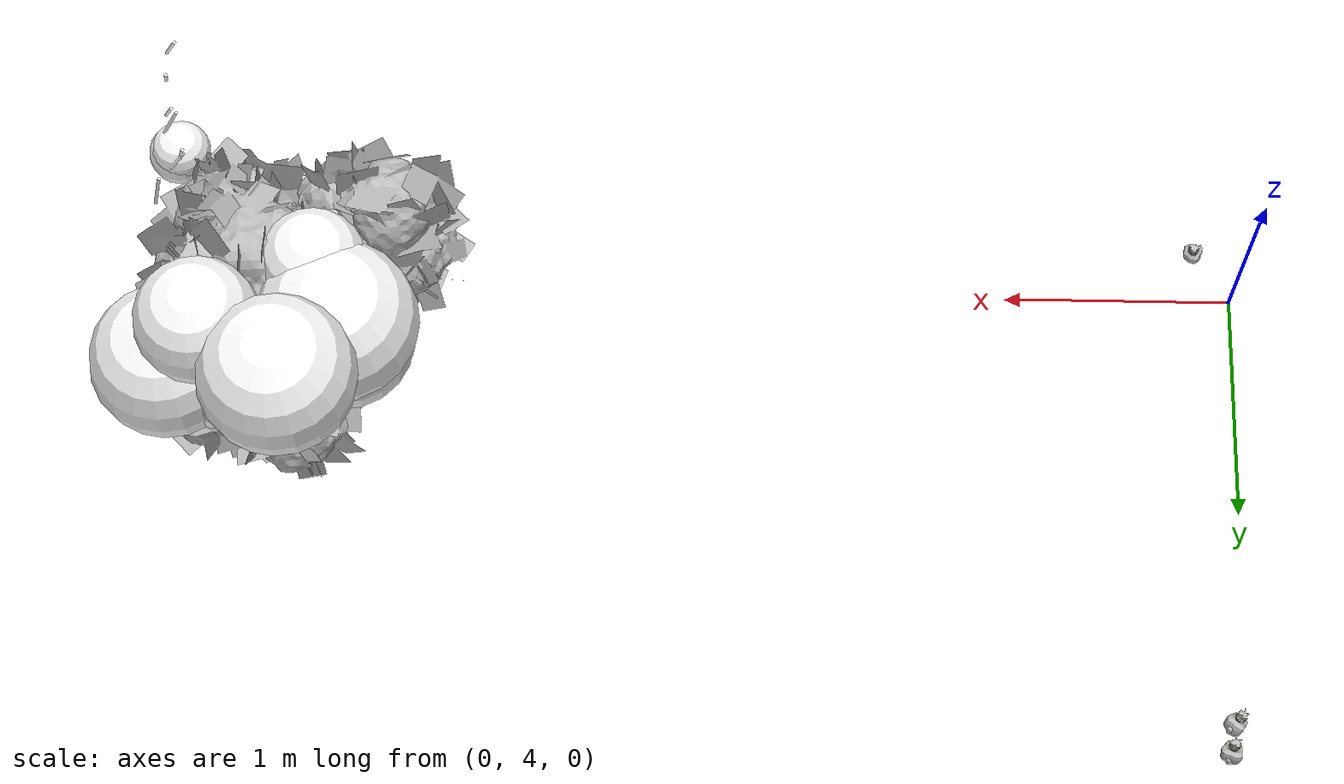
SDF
<sdf version="1.11">
 <world name="peach_orchard">
  <model name="ground">
   <static>true</static>
   <link name="link">
    <visual name="soil">
     <geometry><plane><normal>0 0 1</normal><size>32 22</size></plane></geometry>
     <material>
      <ambient>1 1 1 1</ambient>
      <diffuse>1 1 1 1</diffuse>
      <specular>0.1 0.1 0.1 1</specular>
      <pbr>
       <metal>
        <albedo_map>textures/soil_albedo.png</albedo_map>
        <normal_map type="tangent">textures/soil_normal.png</normal_map>
        <roughness>0.95</roughness>
        <metalness>0</metalness>
       </metal>
      </pbr>
     </material>
    </visual>
    <collision name="c_soil">
     <geometry><plane><normal>0 0 1</normal><size>32 22</size></plane></geometry>
    </collision>
   </link>
  </model>
  <model name="tree_r3_t5">
   <pose>4 4.4 0 0 0 0</pose>
   <static>true</static>
   <link name="link">
    <visual name="tree_mesh">
     <pose>0 0 0 0 0 -0.258499</pose>
     <geometry>
      <mesh><uri>model://peach_sim/meshes/peach_tree_b.glb</uri><scale>0.949625 0.949625 0.949625</scale></mesh>
     </geometry>
    </visual>
    <visual name="trunk_0">
     <pose>0 0 0.165648 0 0 0</pose>
     <geometry><cylinder><radius>0.054194</radius><length>0.331296</length></cylinder></geometry>
     <material>
      <ambient>1 1 1 1</ambient>
      <diffuse>1 1 1 1</diffuse>
      <specular>0.1 0.1 0.1 1</specular>
      <pbr>
       <metal>
        <albedo_map>textures/bark_albedo.png</albedo_map>
        <normal_map type="tangent">textures/bark_normal.png</normal_map>
        <roughness>0.9</roughness>
        <metalness>0</metalness>
       </metal>
      </pbr>
     </material>
    </visual>
    <collision name="c_trunk_0">
     <pose>0 0 0.165648 0 0 0</pose>
     <geometry><cylinder><radius>0.054194</radius><length>0.331296</length></cylinder></geometry>
    </collision>
    <visual name="trunk_1">
     <pose>0 0 0.466826 0 0 0</pose>
     <geometry><cylinder><radius>0.0390197</radius><length>0.27106</length></cylinder></geometry>
     <material>
      <ambient>1 1 1 1</ambient>
      <diffuse>1 1 1 1</diffuse>
      <specular>0.1 0.1 0.1 1</specular>
      <pbr>
       <metal>
        <albedo_map>textures/bark_albedo.png</albedo_map>
        <normal_map type="tangent">textures/bark_normal.png</normal_map>
        <roughness>0.9</roughness>
        <metalness>0</metalness>
       </metal>
      </pbr>
     </material>
    </visual>
    <collision name="c_trunk_1">
     <pose>0 0 0.466826 0 0 0</pose>
     <geometry><cylinder><radius>0.0390197</radius><length>0.27106</length></cylinder></geometry>
    </collision>
    <visual name="root_flare">
     <pose>0 0 0.035 0 0 0</pose>
     <geometry><cylinder><radius>0.0785813</radius><length>0.07</length></cylinder></geometry>
     <material>
      <ambient>1 1 1 1</ambient>
      <diffuse>1 1 1 1</diffuse>
      <specular>0.1 0.1 0.1 1</specular>
      <pbr>
       <metal>
        <albedo_map>textures/bark_albedo.png</albedo_map>
        <normal_map type="tangent">textures/bark_normal.png</normal_map>
        <roughness>0.95</roughness>
        <metalness>0</metalness>
       </metal>
      </pbr>
     </material>
    </visual>
    <visual name="scaffold_0">
     <pose>-0.0632101 0.345211 0.829526 0 0.905512 1.7519</pose>
     <geometry><cylinder><radius>0.022</radius><length>0.892161</length></cylinder></geometry>
     <material>
      <ambient>1 1 1 1</ambient>
      <diffuse>1 1 1 1</diffuse>
      <specular>0.1 0.1 0.1 1</specular>
      <pbr>
       <metal>
        <albedo_map>textures/bark_albedo.png</albedo_map>
        <normal_map type="tangent">textures/bark_normal.png</normal_map>
        <roughness>0.9</roughness>
        <metalness>0</metalness>
       </metal>
      </pbr>
     </material>
    </visual>
    <collision name="c_scaffold_0">
     <pose>-0.0632101 0.345211 0.829526 0 0.905512 1.7519</pose>
     <geometry><cylinder><radius>0.022</radius><length>0.892161</length></cylinder></geometry>
    </collision>
    <visual name="branchlet_0_0">
     <pose>-0.0942612 0.486677 0.955568 0 0.834985 1.80136</pose>
     <geometry><cylinder><radius>0.012</radius><length>0.276331</length></cylinder></geometry>
     <material>
      <ambient>1 1 1 1</ambient>
      <diffuse>1 1 1 1</diffuse>
      <specular>0.1 0.1 0.1 1</specular>
      <pbr>
       <metal>
        <albedo_map>textures/bark_albedo.png</albedo_map>
        <normal_map type="tangent">textures/bark_normal.png</normal_map>
        <roughness>0.9</roughness>
        <metalness>0</metalness>
       </metal>
      </pbr>
     </material>
    </visual>
    <visual name="branchlet_0_1">
     <pose>-0.169162 0.451263 0.895004 0 1.23139 2.46433</pose>
     <geometry><cylinder><radius>0.012</radius><length>0.276183</length></cylinder></geometry>
     <material>
      <ambient>1 1 1 1</ambient>
      <diffuse>1 1 1 1</diffuse>
      <specular>0.1 0.1 0.1 1</specular>
      <pbr>
       <metal>
        <albedo_map>textures/bark_albedo.png</albedo_map>
        <normal_map type="tangent">textures/bark_normal.png</normal_map>
        <roughness>0.9</roughness>
        <metalness>0</metalness>
       </metal>
      </pbr>
     </material>
    </visual>
    <visual name="branchlet_0_2">
     <pose>-0.0259571 0.489117 0.961929 0 0.844355 1.16166</pose>
     <geometry><cylinder><radius>0.012</radius><length>0.300749</length></cylinder></geometry>
     <material>
      <ambient>1 1 1 1</ambient>
      <diffuse>1 1 1 1</diffuse>
      <specular>0.1 0.1 0.1 1</specular>
      <pbr>
       <metal>
        <albedo_map>textures/bark_albedo.png</albedo_map>
        <normal_map type="tangent">textures/bark_normal.png</normal_map>
        <roughness>0.9</roughness>
        <metalness>0</metalness>
       </metal>
      </pbr>
     </material>
    </visual>
    <visual name="scaffold_1">
     <pose>0.0573903 0.290149 0.844512 0 0.794655 1.37552</pose>
     <geometry><cylinder><radius>0.022</radius><length>0.828927</length></cylinder></geometry>
     <material>
      <ambient>1 1 1 1</ambient>
      <diffuse>1 1 1 1</diffuse>
      <specular>0.1 0.1 0.1 1</specular>
      <pbr>
       <metal>
        <albedo_map>textures/bark_albedo.png</albedo_map>
        <normal_map type="tangent">textures/bark_normal.png</normal_map>
        <roughness>0.9</roughness>
        <metalness>0</metalness>
       </metal>
      </pbr>
     </material>
    </visual>
    <collision name="c_scaffold_1">
     <pose>0.0573903 0.290149 0.844512 0 0.794655 1.37552</pose>
     <geometry><cylinder><radius>0.022</radius><length>0.828927</length></cylinder></geometry>
    </collision>
    <visual name="branchlet_1_0">
     <pose>0.153573 0.402125 0.882291 0 1.45813 0.769118</pose>
     <geometry><cylinder><radius>0.012</radius><length>0.256498</length></cylinder></geometry>
     <material>
      <ambient>1 1 1 1</ambient>
      <diffuse>1 1 1 1</diffuse>
      <specular>0.1 0.1 0.1 1</specular>
      <pbr>
       <metal>
        <albedo_map>textures/bark_albedo.png</albedo_map>
        <normal_map type="tangent">textures/bark_normal.png</normal_map>
        <roughness>0.9</roughness>
        <metalness>0</metalness>
       </metal>
      </pbr>
     </material>
    </visual>
    <visual name="branchlet_1_1">
     <pose>0.0276121 0.461654 1.16507 0 0.384813 3.04429</pose>
     <geometry><cylinder><radius>0.012</radius><length>0.334544</length></cylinder></geometry>
     <material>
      <ambient>1 1 1 1</ambient>
      <diffuse>1 1 1 1</diffuse>
      <specular>0.1 0.1 0.1 1</specular>
      <pbr>
       <metal>
        <albedo_map>textures/bark_albedo.png</albedo_map>
        <normal_map type="tangent">textures/bark_normal.png</normal_map>
        <roughness>0.9</roughness>
        <metalness>0</metalness>
       </metal>
      </pbr>
     </material>
    </visual>
    <visual name="canopy_0">
     <pose>0.205331 0.643799 2.09957 0 0 0</pose>
     <geometry><sphere><radius>0.23951</radius></sphere></geometry>
     <material>
      <ambient>1 1 1 1</ambient>
      <diffuse>1 1 1 1</diffuse>
      <specular>0.1 0.1 0.1 1</specular>
      <pbr>
       <metal>
        <albedo_map>textures/leaf_albedo.png</albedo_map>
        <normal_map type="tangent">textures/leaf_normal.png</normal_map>
        <roughness>0.85</roughness>
        <metalness>0</metalness>
       </metal>
      </pbr>
     </material>
    </visual>
    <collision name="c_canopy_0">
     <pose>0.205331 0.643799 2.09957 0 0 0</pose>
     <geometry><sphere><radius>0.23951</radius></sphere></geometry>
    </collision>
    <visual name="canopy_1">
     <pose>0.18669 0.644557 1.78408 0 0 0</pose>
     <geometry><sphere><radius>0.289051</radius></sphere></geometry>
     <material>
      <ambient>1 1 1 1</ambient>
      <diffuse>1 1 1 1</diffuse>
      <specular>0.1 0.1 0.1 1</specular>
      <pbr>
       <metal>
        <albedo_map>textures/leaf_albedo.png</albedo_map>
        <normal_map type="tangent">textures/leaf_normal.png</normal_map>
        <roughness>0.85</roughness>
        <metalness>0</metalness>
       </metal>
      </pbr>
     </material>
    </visual>
    <collision name="c_canopy_1">
     <pose>0.18669 0.644557 1.78408 0 0 0</pose>
     <geometry><sphere><radius>0.289051</radius></sphere></geometry>
    </collision>
    <visual name="canopy_2">
     <pose>-0.282506 0.558122 1.89588 0 0 0</pose>
     <geometry><sphere><radius>0.317283</radius></sphere></geometry>
     <material>
      <ambient>1 1 1 1</ambient>
      <diffuse>1 1 1 1</diffuse>
      <specular>0.1 0.1 0.1 1</specular>
      <pbr>
       <metal>
        <albedo_map>textures/leaf_albedo.png</albedo_map>
        <normal_map type="tangent">textures/leaf_normal.png</normal_map>
        <roughness>0.85</roughness>
        <metalness>0</metalness>
       </metal>
      </pbr>
     </material>
    </visual>
    <collision name="c_canopy_2">
     <pose>-0.282506 0.558122 1.89588 0 0 0</pose>
     <geometry><sphere><radius>0.317283</radius></sphere></geometry>
    </collision>
    <visual name="canopy_3">
     <pose>-0.211474 0.44633 1.84649 0 0 0</pose>
     <geometry><sphere><radius>0.199162</radius></sphere></geometry>
     <material>
      <ambient>1 1 1 1</ambient>
      <diffuse>1 1 1 1</diffuse>
      <specular>0.1 0.1 0.1 1</specular>
      <pbr>
       <metal>
        <albedo_map>textures/leaf_albedo.png</albedo_map>
        <normal_map type="tangent">textures/leaf_normal.png</normal_map>
        <roughness>0.85</roughness>
        <metalness>0</metalness>
       </metal>
      </pbr>
     </material>
    </visual>
    <visual name="canopy_4">
     <pose>-0.192283 0.35417 1.98891 0 0 0</pose>
     <geometry><sphere><radius>0.207768</radius></sphere></geometry>
     <material>
      <ambient>1 1 1 1</ambient>
      <diffuse>1 1 1 1</diffuse>
      <specular>0.1 0.1 0.1 1</specular>
      <pbr>
       <metal>
        <albedo_map>textures/leaf_albedo.png</albedo_map>
        <normal_map type="tangent">textures/leaf_normal.png</normal_map>
        <roughness>0.85</roughness>
        <metalness>0</metalness>
       </metal>
      </pbr>
     </material>
    </visual>
    <visual name="canopy_5">
     <pose>-0.21588 0.241868 1.74062 0 0 0</pose>
     <geometry><sphere><radius>0.207851</radius></sphere></geometry>
     <material>
      <ambient>1 1 1 1</ambient>
      <diffuse>1 1 1 1</diffuse>
      <specular>0.1 0.1 0.1 1</specular>
      <pbr>
       <metal>
        <albedo_map>textures/leaf_albedo.png</albedo_map>
        <normal_map type="tangent">textures/leaf_normal.png</normal_map>
        <roughness>0.85</roughness>
        <metalness>0</metalness>
       </metal>
      </pbr>
     </material>
    </visual>
    <visual name="canopy_6">
     <pose>-0.302026 0.588587 1.83021 0 0 0</pose>
     <geometry><sphere><radius>0.278899</radius></sphere></geometry>
     <material>
      <ambient>1 1 1 1</ambient>
      <diffuse>1 1 1 1</diffuse>
      <specular>0.1 0.1 0.1 1</specular>
      <pbr>
       <metal>
        <albedo_map>textures/leaf_albedo.png</albedo_map>
        <normal_map type="tangent">textures/leaf_normal.png</normal_map>
        <roughness>0.85</roughness>
        <metalness>0</metalness>
       </metal>
      </pbr>
     </material>
    </visual>
    <visual name="canopy_7">
     <pose>0.361669 0.684385 1.79817 0 0 0</pose>
     <geometry><sphere><radius>0.295973</radius></sphere></geometry>
     <material>
      <ambient>1 1 1 1</ambient>
      <diffuse>1 1 1 1</diffuse>
      <specular>0.1 0.1 0.1 1</specular>
      <pbr>
       <metal>
        <albedo_map>textures/leaf_albedo.png</albedo_map>
        <normal_map type="tangent">textures/leaf_normal.png</normal_map>
        <roughness>0.85</roughness>
        <metalness>0</metalness>
       </metal>
      </pbr>
     </material>
    </visual>
    <visual name="canopy_8">
     <pose>-0.10431 0.855873 2.0981 0 0 0</pose>
     <geometry><sphere><radius>0.30174</radius></sphere></geometry>
     <material>
      <ambient>1 1 1 1</ambient>
      <diffuse>1 1 1 1</diffuse>
      <specular>0.1 0.1 0.1 1</specular>
      <pbr>
       <metal>
        <albedo_map>textures/leaf_albedo.png</albedo_map>
        <normal_map type="tangent">textures/leaf_normal.png</normal_map>
        <roughness>0.85</roughness>
        <metalness>0</metalness>
       </metal>
      </pbr>
     </material>
    </visual>
    <visual name="canopy_9">
     <pose>-0.19605 0.608618 1.64664 0 0 0</pose>
     <geometry><sphere><radius>0.213565</radius></sphere></geometry>
     <material>
      <ambient>1 1 1 1</ambient>
      <diffuse>1 1 1 1</diffuse>
      <specular>0.1 0.1 0.1 1</specular>
      <pbr>
       <metal>
        <albedo_map>textures/leaf_albedo.png</albedo_map>
        <normal_map type="tangent">textures/leaf_normal.png</normal_map>
        <roughness>0.85</roughness>
        <metalness>0</metalness>
       </metal>
      </pbr>
     </material>
    </visual>
    <visual name="foliage_0">
     <pose>0.465229 -0.40706 1.37634 0 0 0</pose>
     <geometry><sphere><radius>0.119184</radius></sphere></geometry>
     <material>
      <ambient>1 1 1 1</ambient>
      <diffuse>1 1 1 1</diffuse>
      <specular>0.1 0.1 0.1 1</specular>
      <pbr>
       <metal>
        <albedo_map>textures/leaf_albedo.png</albedo_map>
        <normal_map type="tangent">textures/leaf_normal.png</normal_map>
        <roughness>0.85</roughness>
        <metalness>0</metalness>
       </metal>
      </pbr>
     </material>
    </visual>
    <visual name="foliage_4">
     <pose>0.473174 -0.407209 1.34962 0 0 0</pose>
     <geometry><sphere><radius>0.124977</radius></sphere></geometry>
     <material>
      <ambient>1 1 1 1</ambient>
      <diffuse>1 1 1 1</diffuse>
      <specular>0.1 0.1 0.1 1</specular>
      <pbr>
       <metal>
        <albedo_map>textures/leaf_albedo.png</albedo_map>
        <normal_map type="tangent">textures/leaf_normal.png</normal_map>
        <roughness>0.85</roughness>
        <metalness>0</metalness>
       </metal>
      </pbr>
     </material>
    </visual>
    <visual name="twig_0">
     <pose>0.491606 -0.451812 1.52509 0 0.540122 -2.6712</pose>
     <geometry><cylinder><radius>0.007</radius><length>0.146872</length></cylinder></geometry>
     <material>
      <ambient>1 1 1 1</ambient>
      <diffuse>1 1 1 1</diffuse>
      <specular>0.1 0.1 0.1 1</specular>
      <pbr>
       <metal>
        <albedo_map>textures/bark_albedo.png</albedo_map>
        <normal_map type="tangent">textures/bark_normal.png</normal_map>
        <roughness>0.9</roughness>
        <metalness>0</metalness>
       </metal>
      </pbr>
     </material>
    </visual>
    <visual name="twig_1">
     <pose>0.512459 -0.532349 1.46935 0 0.410593 2.60157</pose>
     <geometry><cylinder><radius>0.007</radius><length>0.11205</length></cylinder></geometry>
     <material>
      <ambient>1 1 1 1</ambient>
      <diffuse>1 1 1 1</diffuse>
      <specular>0.1 0.1 0.1 1</specular>
      <pbr>
       <metal>
        <albedo_map>textures/bark_albedo.png</albedo_map>
        <normal_map type="tangent">textures/bark_normal.png</normal_map>
        <roughness>0.9</roughness>
        <metalness>0</metalness>
       </metal>
      </pbr>
     </material>
    </visual>
    <visual name="twig_2">
     <pose>0.529479 -0.671135 1.50322 0 0.327078 2.07756</pose>
     <geometry><cylinder><radius>0.007</radius><length>0.115112</length></cylinder></geometry>
     <material>
      <ambient>1 1 1 1</ambient>
      <diffuse>1 1 1 1</diffuse>
      <specular>0.1 0.1 0.1 1</specular>
      <pbr>
       <metal>
        <albedo_map>textures/bark_albedo.png</albedo_map>
        <normal_map type="tangent">textures/bark_normal.png</normal_map>
        <roughness>0.9</roughness>
        <metalness>0</metalness>
       </metal>
      </pbr>
     </material>
    </visual>
    <visual name="twig_3">
     <pose>0.515695 -0.791862 1.53229 0 0.418627 2.48305</pose>
     <geometry><cylinder><radius>0.007</radius><length>0.200048</length></cylinder></geometry>
     <material>
      <ambient>1 1 1 1</ambient>
      <diffuse>1 1 1 1</diffuse>
      <specular>0.1 0.1 0.1 1</specular>
      <pbr>
       <metal>
        <albedo_map>textures/bark_albedo.png</albedo_map>
        <normal_map type="tangent">textures/bark_normal.png</normal_map>
        <roughness>0.9</roughness>
        <metalness>0</metalness>
       </metal>
      </pbr>
     </material>
    </visual>
    <visual name="twig_4">
     <pose>0.445894 -0.329439 1.47819 0 0.267401 2.80052</pose>
     <geometry><cylinder><radius>0.007</radius><length>0.152175</length></cylinder></geometry>
     <material>
      <ambient>1 1 1 1</ambient>
      <diffuse>1 1 1 1</diffuse>
      <specular>0.1 0.1 0.1 1</specular>
      <pbr>
       <metal>
        <albedo_map>textures/bark_albedo.png</albedo_map>
        <normal_map type="tangent">textures/bark_normal.png</normal_map>
        <roughness>0.9</roughness>
        <metalness>0</metalness>
       </metal>
      </pbr>
     </material>
    </visual>
    <visual name="twig_5">
     <pose>0.461346 -0.317161 1.46161 0 0.683566 -2.71476</pose>
     <geometry><cylinder><radius>0.007</radius><length>0.103575</length></cylinder></geometry>
     <material>
      <ambient>1 1 1 1</ambient>
      <diffuse>1 1 1 1</diffuse>
      <specular>0.1 0.1 0.1 1</specular>
      <pbr>
       <metal>
        <albedo_map>textures/bark_albedo.png</albedo_map>
        <normal_map type="tangent">textures/bark_normal.png</normal_map>
        <roughness>0.9</roughness>
        <metalness>0</metalness>
       </metal>
      </pbr>
     </material>
    </visual>
    <visual name="twig_6">
     <pose>0.534251 -0.191353 1.44283 0 0.321212 -2.32419</pose>
     <geometry><cylinder><radius>0.007</radius><length>0.158169</length></cylinder></geometry>
     <material>
      <ambient>1 1 1 1</ambient>
      <diffuse>1 1 1 1</diffuse>
      <specular>0.1 0.1 0.1 1</specular>
      <pbr>
       <metal>
        <albedo_map>textures/bark_albedo.png</albedo_map>
        <normal_map type="tangent">textures/bark_normal.png</normal_map>
        <roughness>0.9</roughness>
        <metalness>0</metalness>
       </metal>
      </pbr>
     </material>
    </visual>
   </link>
  </model>
  <model name="peach_tree_r2_t5_04">
   <pose>0.376772 4.37141 1.32095 0 0.00397033 -0.410462</pose>
   <static>true</static>
   <link name="bag">
    <visual name="bag_mesh">
     <pose>0 0 0.0416396 0 0 -0</pose>
     <geometry>
      <mesh><uri>model://peach_sim/meshes/bagged_peach.glb</uri><scale>0.928091 1.06822 0.946355</scale></mesh>
     </geometry>
    </visual>
    <visual name="body">
     <pose>0 0 0.0236396 0 0 0</pose>
     <geometry><ellipsoid><radii>0.0348034 0.0277736 0.0255308</radii></ellipsoid></geometry>
     <material>
      <ambient>1 1 1 1</ambient>
      <diffuse>1 1 1 1</diffuse>
      <specular>0.1 0.1 0.1 1</specular>
      <pbr>
       <metal>
        <albedo_map>textures/paper_bag_albedo.png</albedo_map>
        <normal_map type="tangent">textures/paper_bag_normal.png</normal_map>
        <roughness>0.72</roughness>
        <metalness>0</metalness>
       </metal>
      </pbr>
     </material>
    </visual>
    <visual name="bottom_fold">
     <pose>0 0 0.012 0 0 0.35</pose>
     <geometry><box><size>0.0539453 0.0319397 0.022</size></box></geometry>
     <material>
      <ambient>1 1 1 1</ambient>
      <diffuse>1 1 1 1</diffuse>
      <specular>0.1 0.1 0.1 1</specular>
      <pbr>
       <metal>
        <albedo_map>textures/paper_bag_albedo.png</albedo_map>
        <normal_map type="tangent">textures/paper_bag_normal.png</normal_map>
        <roughness>0.8</roughness>
        <metalness>0</metalness>
       </metal>
      </pbr>
     </material>
    </visual>
    <visual name="fruit">
     <pose>0 0 0.0190409 0 0 0</pose>
     <geometry><sphere><radius>0.0260425</radius></sphere></geometry>
     <material>
      <ambient>1 1 1 1</ambient>
      <diffuse>1 1 1 1</diffuse>
      <specular>0.1 0.1 0.1 1</specular>
      <pbr>
       <metal>
        <albedo_map>textures/fruit_skin_albedo.png</albedo_map>
        <normal_map type="tangent">textures/fruit_skin_normal.png</normal_map>
        <roughness>0.55</roughness>
        <metalness>0</metalness>
       </metal>
      </pbr>
     </material>
    </visual>
    <visual name="neck">
     <pose>0 0 0.0562792 0 0 0</pose>
     <geometry><cylinder><radius>0.013</radius><length>0.018</length></cylinder></geometry>
     <material>
      <ambient>1 1 1 1</ambient>
      <diffuse>1 1 1 1</diffuse>
      <specular>0.1 0.1 0.1 1</specular>
      <pbr>
       <metal>
        <albedo_map>textures/paper_bag_albedo.png</albedo_map>
        <normal_map type="tangent">textures/paper_bag_normal.png</normal_map>
        <roughness>0.75</roughness>
        <metalness>0</metalness>
       </metal>
      </pbr>
     </material>
    </visual>
    <visual name="gather">
     <pose>0 0 0.0372792 0 0 0</pose>
     <geometry><cylinder><radius>0.019</radius><length>0.02</length></cylinder></geometry>
     <material>
      <ambient>1 1 1 1</ambient>
      <diffuse>1 1 1 1</diffuse>
      <specular>0.1 0.1 0.1 1</specular>
      <pbr>
       <metal>
        <albedo_map>textures/paper_bag_albedo.png</albedo_map>
        <normal_map type="tangent">textures/paper_bag_normal.png</normal_map>
        <roughness>0.8</roughness>
        <metalness>0</metalness>
       </metal>
      </pbr>
     </material>
    </visual>
    <visual name="inner_paper">
     <pose>0 0 0.0612792 0 0 0</pose>
     <geometry><cylinder><radius>0.01</radius><length>0.008</length></cylinder></geometry>
     <material>
      <ambient>0.180392 0.14902 0.133333 1</ambient>
      <diffuse>0.180392 0.14902 0.133333 1</diffuse>
      <specular>0.1 0.1 0.1 1</specular>
     </material>
    </visual>
    <visual name="wire_0">
     <pose>0 0 0.0512792 0 0 0</pose>
     <geometry><cylinder><radius>0.0205</radius><length>0.0035</length></cylinder></geometry>
     <material>
      <ambient>0.25 0.25 0.25 1</ambient>
      <diffuse>0.25 0.25 0.25 1</diffuse>
      <specular>0.1 0.1 0.1 1</specular>
     </material>
    </visual>
    <visual name="wire_1">
     <pose>0 0 0.0582792 0 0 0</pose>
     <geometry><cylinder><radius>0.0205</radius><length>0.0035</length></cylinder></geometry>
     <material>
      <ambient>0.25 0.25 0.25 1</ambient>
      <diffuse>0.25 0.25 0.25 1</diffuse>
      <specular>0.1 0.1 0.1 1</specular>
     </material>
    </visual>
    <visual name="wire_tail">
     <pose>0.01 0 0.0592792 0 0.521618 0</pose>
     <geometry><cylinder><radius>0.0012</radius><length>0.026</length></cylinder></geometry>
     <material>
      <ambient>0.25 0.25 0.25 1</ambient>
      <diffuse>0.25 0.25 0.25 1</diffuse>
      <specular>0.1 0.1 0.1 1</specular>
     </material>
    </visual>
    <collision name="c_body">
     <pose>0 0 0.0236396 0 0 0</pose>
     <geometry><cylinder><radius>0.0348034</radius><length>0.0472792</length></cylinder></geometry>
    </collision>
   </link>
  </model>
  <model name="peach_tree_r2_t6_00">
   <pose>0.323816 6.35342 1.40562 0 0.557494 -2.29775</pose>
   <static>true</static>
   <link name="bag">
    <visual name="bag_mesh">
     <pose>0 0 0.0473309 0 0 -0</pose>
     <geometry>
      <mesh><uri>model://peach_sim/meshes/bagged_peach.glb</uri><scale>1.02765 1.16406 1.0757</scale></mesh>
     </geometry>
    </visual>
    <visual name="body">
     <pose>0 0 0.0293309 0 0 0</pose>
     <geometry><ellipsoid><radii>0.038537 0.0302656 0.0316774</radii></ellipsoid></geometry>
     <material>
      <ambient>1 1 1 1</ambient>
      <diffuse>1 1 1 1</diffuse>
      <specular>0.1 0.1 0.1 1</specular>
      <pbr>
       <metal>
        <albedo_map>textures/paper_bag_albedo.png</albedo_map>
        <normal_map type="tangent">textures/paper_bag_normal.png</normal_map>
        <roughness>0.72</roughness>
        <metalness>0</metalness>
       </metal>
      </pbr>
     </material>
    </visual>
    <visual name="bottom_fold">
     <pose>0 0 0.012 0 0 0.35</pose>
     <geometry><box><size>0.0597324 0.0348054 0.022</size></box></geometry>
     <material>
      <ambient>1 1 1 1</ambient>
      <diffuse>1 1 1 1</diffuse>
      <specular>0.1 0.1 0.1 1</specular>
      <pbr>
       <metal>
        <albedo_map>textures/paper_bag_albedo.png</albedo_map>
        <normal_map type="tangent">textures/paper_bag_normal.png</normal_map>
        <roughness>0.8</roughness>
        <metalness>0</metalness>
       </metal>
      </pbr>
     </material>
    </visual>
    <visual name="fruit">
     <pose>0 0 0.0181854 0 0 0</pose>
     <geometry><sphere><radius>0.0251528</radius></sphere></geometry>
     <material>
      <ambient>1 1 1 1</ambient>
      <diffuse>1 1 1 1</diffuse>
      <specular>0.1 0.1 0.1 1</specular>
      <pbr>
       <metal>
        <albedo_map>textures/fruit_skin_albedo.png</albedo_map>
        <normal_map type="tangent">textures/fruit_skin_normal.png</normal_map>
        <roughness>0.55</roughness>
        <metalness>0</metalness>
       </metal>
      </pbr>
     </material>
    </visual>
    <visual name="neck">
     <pose>0 0 0.0676618 0 0 0</pose>
     <geometry><cylinder><radius>0.013</radius><length>0.018</length></cylinder></geometry>
     <material>
      <ambient>1 1 1 1</ambient>
      <diffuse>1 1 1 1</diffuse>
      <specular>0.1 0.1 0.1 1</specular>
      <pbr>
       <metal>
        <albedo_map>textures/paper_bag_albedo.png</albedo_map>
        <normal_map type="tangent">textures/paper_bag_normal.png</normal_map>
        <roughness>0.75</roughness>
        <metalness>0</metalness>
       </metal>
      </pbr>
     </material>
    </visual>
    <visual name="gather">
     <pose>0 0 0.0486618 0 0 0</pose>
     <geometry><cylinder><radius>0.019</radius><length>0.02</length></cylinder></geometry>
     <material>
      <ambient>1 1 1 1</ambient>
      <diffuse>1 1 1 1</diffuse>
      <specular>0.1 0.1 0.1 1</specular>
      <pbr>
       <metal>
        <albedo_map>textures/paper_bag_albedo.png</albedo_map>
        <normal_map type="tangent">textures/paper_bag_normal.png</normal_map>
        <roughness>0.8</roughness>
        <metalness>0</metalness>
       </metal>
      </pbr>
     </material>
    </visual>
    <visual name="inner_paper">
     <pose>0 0 0.0726618 0 0 0</pose>
     <geometry><cylinder><radius>0.01</radius><length>0.008</length></cylinder></geometry>
     <material>
      <ambient>0.180392 0.14902 0.133333 1</ambient>
      <diffuse>0.180392 0.14902 0.133333 1</diffuse>
      <specular>0.1 0.1 0.1 1</specular>
     </material>
    </visual>
    <visual name="wire_0">
     <pose>0 0 0.0626618 0 0 0</pose>
     <geometry><cylinder><radius>0.0205</radius><length>0.0035</length></cylinder></geometry>
     <material>
      <ambient>0.25 0.25 0.25 1</ambient>
      <diffuse>0.25 0.25 0.25 1</diffuse>
      <specular>0.1 0.1 0.1 1</specular>
     </material>
    </visual>
    <visual name="wire_1">
     <pose>0 0 0.0696618 0 0 0</pose>
     <geometry><cylinder><radius>0.0205</radius><length>0.0035</length></cylinder></geometry>
     <material>
      <ambient>0.25 0.25 0.25 1</ambient>
      <diffuse>0.25 0.25 0.25 1</diffuse>
      <specular>0.1 0.1 0.1 1</specular>
     </material>
    </visual>
    <visual name="wire_tail">
     <pose>0.01 0 0.0706618 0 0.521618 0</pose>
     <geometry><cylinder><radius>0.0012</radius><length>0.026</length></cylinder></geometry>
     <material>
      <ambient>0.25 0.25 0.25 1</ambient>
      <diffuse>0.25 0.25 0.25 1</diffuse>
      <specular>0.1 0.1 0.1 1</specular>
     </material>
    </visual>
    <collision name="c_body">
     <pose>0 0 0.0293309 0 0 0</pose>
     <geometry><cylinder><radius>0.038537</radius><length>0.0586618</length></cylinder></geometry>
    </collision>
   </link>
  </model>
  <model name="peach_tree_r2_t6_01">
   <pose>0.338667 6.46785 1.42897 0 0.401451 -1.88044</pose>
   <static>true</static>
   <link name="bag">
    <visual name="bag_mesh">
     <pose>0 0 0.0457895 0 0 -0</pose>
     <geometry>
      <mesh><uri>model://peach_sim/meshes/bagged_peach.glb</uri><scale>1.04473 1.18092 1.04067</scale></mesh>
     </geometry>
    </visual>
    <visual name="body">
     <pose>0 0 0.0277895 0 0 0</pose>
     <geometry><ellipsoid><radii>0.0391772 0.030704 0.0300127</radii></ellipsoid></geometry>
     <material>
      <ambient>1 1 1 1</ambient>
      <diffuse>1 1 1 1</diffuse>
      <specular>0.1 0.1 0.1 1</specular>
      <pbr>
       <metal>
        <albedo_map>textures/paper_bag_albedo.png</albedo_map>
        <normal_map type="tangent">textures/paper_bag_normal.png</normal_map>
        <roughness>0.72</roughness>
        <metalness>0</metalness>
       </metal>
      </pbr>
     </material>
    </visual>
    <visual name="bottom_fold">
     <pose>0 0 0.012 0 0 0.35</pose>
     <geometry><box><size>0.0607247 0.0353095 0.022</size></box></geometry>
     <material>
      <ambient>1 1 1 1</ambient>
      <diffuse>1 1 1 1</diffuse>
      <specular>0.1 0.1 0.1 1</specular>
      <pbr>
       <metal>
        <albedo_map>textures/paper_bag_albedo.png</albedo_map>
        <normal_map type="tangent">textures/paper_bag_normal.png</normal_map>
        <roughness>0.8</roughness>
        <metalness>0</metalness>
       </metal>
      </pbr>
     </material>
    </visual>
    <visual name="fruit">
     <pose>0 0 0.0214626 0 0 0</pose>
     <geometry><sphere><radius>0.0285611</radius></sphere></geometry>
     <material>
      <ambient>1 1 1 1</ambient>
      <diffuse>1 1 1 1</diffuse>
      <specular>0.1 0.1 0.1 1</specular>
      <pbr>
       <metal>
        <albedo_map>textures/fruit_skin_albedo.png</albedo_map>
        <normal_map type="tangent">textures/fruit_skin_normal.png</normal_map>
        <roughness>0.55</roughness>
        <metalness>0</metalness>
       </metal>
      </pbr>
     </material>
    </visual>
    <visual name="neck">
     <pose>0 0 0.064579 0 0 0</pose>
     <geometry><cylinder><radius>0.013</radius><length>0.018</length></cylinder></geometry>
     <material>
      <ambient>1 1 1 1</ambient>
      <diffuse>1 1 1 1</diffuse>
      <specular>0.1 0.1 0.1 1</specular>
      <pbr>
       <metal>
        <albedo_map>textures/paper_bag_albedo.png</albedo_map>
        <normal_map type="tangent">textures/paper_bag_normal.png</normal_map>
        <roughness>0.75</roughness>
        <metalness>0</metalness>
       </metal>
      </pbr>
     </material>
    </visual>
    <visual name="gather">
     <pose>0 0 0.045579 0 0 0</pose>
     <geometry><cylinder><radius>0.019</radius><length>0.02</length></cylinder></geometry>
     <material>
      <ambient>1 1 1 1</ambient>
      <diffuse>1 1 1 1</diffuse>
      <specular>0.1 0.1 0.1 1</specular>
      <pbr>
       <metal>
        <albedo_map>textures/paper_bag_albedo.png</albedo_map>
        <normal_map type="tangent">textures/paper_bag_normal.png</normal_map>
        <roughness>0.8</roughness>
        <metalness>0</metalness>
       </metal>
      </pbr>
     </material>
    </visual>
    <visual name="inner_paper">
     <pose>0 0 0.069579 0 0 0</pose>
     <geometry><cylinder><radius>0.01</radius><length>0.008</length></cylinder></geometry>
     <material>
      <ambient>0.180392 0.14902 0.133333 1</ambient>
      <diffuse>0.180392 0.14902 0.133333 1</diffuse>
      <specular>0.1 0.1 0.1 1</specular>
     </material>
    </visual>
    <visual name="wire_0">
     <pose>0 0 0.059579 0 0 0</pose>
     <geometry><cylinder><radius>0.0205</radius><length>0.0035</length></cylinder></geometry>
     <material>
      <ambient>0.25 0.25 0.25 1</ambient>
      <diffuse>0.25 0.25 0.25 1</diffuse>
      <specular>0.1 0.1 0.1 1</specular>
     </material>
    </visual>
    <visual name="wire_1">
     <pose>0 0 0.066579 0 0 0</pose>
     <geometry><cylinder><radius>0.0205</radius><length>0.0035</length></cylinder></geometry>
     <material>
      <ambient>0.25 0.25 0.25 1</ambient>
      <diffuse>0.25 0.25 0.25 1</diffuse>
      <specular>0.1 0.1 0.1 1</specular>
     </material>
    </visual>
    <visual name="wire_tail">
     <pose>0.01 0 0.067579 0 0.521618 0</pose>
     <geometry><cylinder><radius>0.0012</radius><length>0.026</length></cylinder></geometry>
     <material>
      <ambient>0.25 0.25 0.25 1</ambient>
      <diffuse>0.25 0.25 0.25 1</diffuse>
      <specular>0.1 0.1 0.1 1</specular>
     </material>
    </visual>
    <collision name="c_body">
     <pose>0 0 0.0277895 0 0 0</pose>
     <geometry><cylinder><radius>0.0391772</radius><length>0.055579</length></cylinder></geometry>
    </collision>
   </link>
  </model>
 </world>
</sdf>
